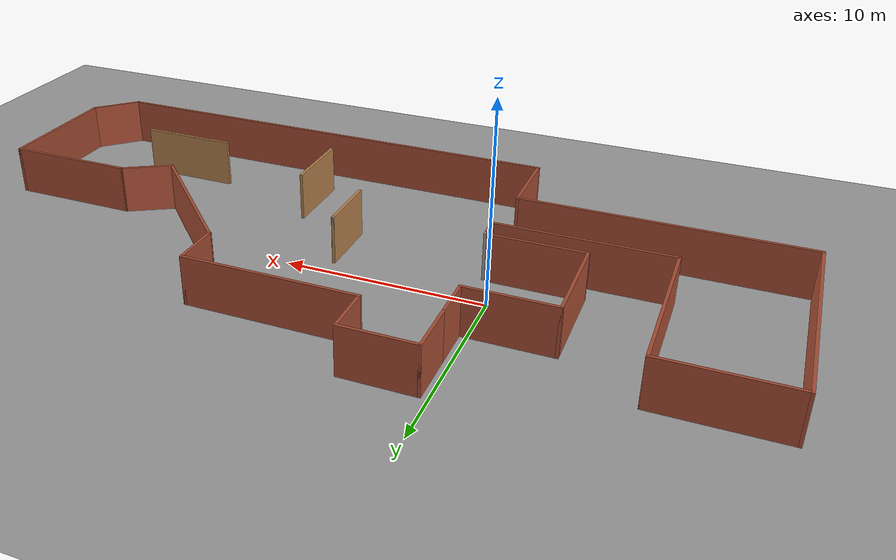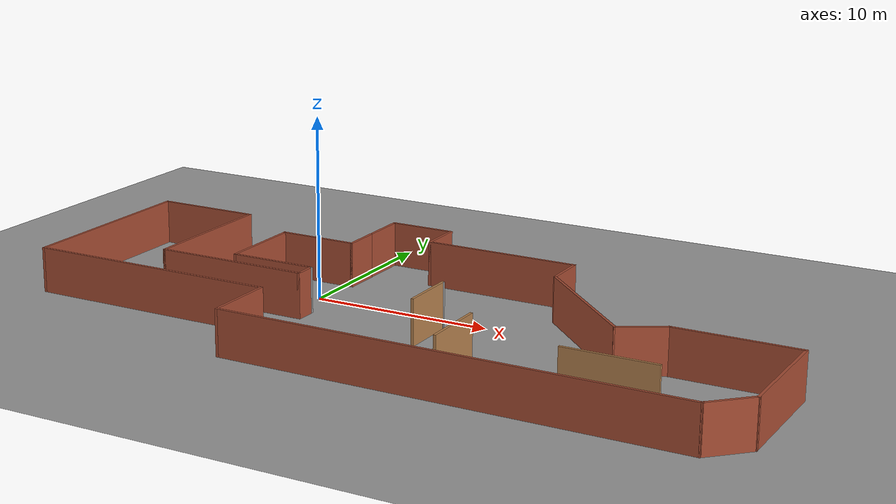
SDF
<?xml version='1.0'?>
<sdf version='1.6'>

  <light name='sun' type='directional'>
      <cast_shadows>1</cast_shadows>
      <pose>0 0 10 0 -0 0</pose>
      <diffuse>0.8 0.8 0.8 1</diffuse>
      <specular>0.2 0.2 0.2 1</specular>
      <attenuation>
        <range>1000</range>
        <constant>0.9</constant>
        <linear>0.01</linear>
        <quadratic>0.001</quadratic>
      </attenuation>
      <direction>0.5 0.1 -0.9</direction>
  </light>
  <scene>
      <ambient>0.4 0.4 0.4 1</ambient>
      <background>0.7 0.7 0.7 1</background>
      <shadows>1</shadows>
  </scene>
  <physics type='ode'>
      <max_step_size>0.01</max_step_size>
      <real_time_factor>1</real_time_factor>
      <real_time_update_rate>100</real_time_update_rate>
      <gravity>0 0 -9.8</gravity>
  </physics>
    <model name='ground_plane_0'>
      <static>1</static>
      <link name='link'>
        <collision name='collision'>
          <geometry>
            <plane>
              <normal>0 0 1</normal>
              <size>100 100</size>
            </plane>
          </geometry>
          <surface>
            <friction>
              <ode>
                <mu>100</mu>
                <mu2>50</mu2>
              </ode>
            </friction>
            <bounce/>
            <contact>
              <ode/>
            </contact>
          </surface>
          <max_contacts>10</max_contacts>
        </collision>
        <visual name='visual'>
          <cast_shadows>0</cast_shadows>
          <geometry>
            <plane>
              <normal>0 0 1</normal>
              <size>100 100</size>
            </plane>
          </geometry>
          <material>
            <script>
              <uri>file://media/materials/scripts/gazebo.material</uri>
              <name>Gazebo/Grey</name>
            </script>
          </material>
        </visual>
        <velocity_decay>
          <linear>0</linear>
          <angular>0</angular>
        </velocity_decay>
        <self_collide>0</self_collide>
        <kinematic>0</kinematic>
        <gravity>1</gravity>
      </link>
      <pose>0.497681 0 0 0 -0 0</pose>
    </model>
  <model name='test_world'>
    <pose frame=''>6.80053 -1.37855 0 0 -0 0</pose>
    <link name='Wall_0'>
      <collision name='Wall_0_Collision'>
        <geometry>
          <box>
            <size>4.75 0.15 2.5</size>
          </box>
        </geometry>
        <pose frame=''>0 0 1.25 0 -0 0</pose>
      </collision>
      <visual name='Wall_0_Visual'>
        <pose frame=''>0 0 1.25 0 -0 0</pose>
        <geometry>
          <box>
            <size>4.75 0.15 2.5</size>
          </box>
        </geometry>
        <material>
          <script>
            <uri>file://media/materials/scripts/gazebo.material</uri>
            <name>Gazebo/Bricks</name>
          </script>
          <ambient>1 1 1 1</ambient>
        </material>
        <meta>
          <layer>0</layer>
        </meta>
      </visual>
      <pose frame=''>-8.45053 -0.751446 0 0 -0 3.14159</pose>
    </link>
    <link name='Wall_10'>
      <collision name='Wall_10_Collision'>
        <geometry>
          <box>
            <size>2.5 0.15 2.5</size>
          </box>
        </geometry>
        <pose frame=''>0 0 1.25 0 -0 0</pose>
      </collision>
      <visual name='Wall_10_Visual'>
        <pose frame=''>0 0 1.25 0 -0 0</pose>
        <geometry>
          <box>
            <size>2.5 0.15 2.5</size>
          </box>
        </geometry>
        <material>
          <script>
            <uri>file://media/materials/scripts/gazebo.material</uri>
            <name>Gazebo/Bricks</name>
          </script>
          <ambient>1 1 1 1</ambient>
        </material>
        <meta>
          <layer>0</layer>
        </meta>
      </visual>
      <pose frame=''>5.79948 5.27355 0 0 -0 -1.5708</pose>
    </link>
    <link name='Wall_11'>
      <collision name='Wall_11_Collision'>
        <geometry>
          <box>
            <size>8.25 0.15 2.5</size>
          </box>
        </geometry>
        <pose frame=''>0 0 1.25 0 -0 0</pose>
      </collision>
      <visual name='Wall_11_Visual'>
        <pose frame=''>0 0 1.25 0 -0 0</pose>
        <geometry>
          <box>
            <size>8.25 0.15 2.5</size>
          </box>
        </geometry>
        <material>
          <script>
            <uri>file://media/materials/scripts/gazebo.material</uri>
            <name>Gazebo/Bricks</name>
          </script>
          <ambient>1 1 1 1</ambient>
        </material>
        <meta>
          <layer>0</layer>
        </meta>
      </visual>
      <pose frame=''>8.66326 1.23477 0 0 -0 -0.785398</pose>
    </link>
    <link name='Wall_12'>
      <collision name='Wall_12_Collision'>
        <geometry>
          <box>
            <size>2.75 0.15 2.5</size>
          </box>
        </geometry>
        <pose frame=''>0 0 1.25 0 -0 0</pose>
      </collision>
      <visual name='Wall_12_Visual'>
        <pose frame=''>0 0 1.25 0 -0 0</pose>
        <geometry>
          <box>
            <size>2.75 0.15 2.5</size>
          </box>
        </geometry>
        <material>
          <script>
            <uri>file://media/materials/scripts/gazebo.material</uri>
            <name>Gazebo/Bricks</name>
          </script>
          <ambient>1 1 1 1</ambient>
        </material>
        <meta>
          <layer>0</layer>
        </meta>
      </visual>
      <pose frame=''>12.6529 -0.979011 0 0 -0 0.523599</pose>
    </link>
    <link name='Wall_13'>
      <collision name='Wall_13_Collision'>
        <geometry>
          <box>
            <size>6.75 0.15 2.5</size>
          </box>
        </geometry>
        <pose frame=''>0 0 1.25 0 -0 0</pose>
      </collision>
      <visual name='Wall_13_Visual'>
        <pose frame=''>0 0 1.25 0 -0 0</pose>
        <geometry>
          <box>
            <size>6.75 0.15 2.5</size>
          </box>
        </geometry>
        <material>
          <script>
            <uri>file://media/materials/scripts/gazebo.material</uri>
            <name>Gazebo/Bricks</name>
          </script>
          <ambient>1 1 1 1</ambient>
        </material>
        <meta>
          <layer>0</layer>
        </meta>
      </visual>
      <pose frame=''>17.0787 -0.329011 0 0 -0 0</pose>
    </link>
    <link name='Wall_14'>
      <collision name='Wall_14_Collision'>
        <geometry>
          <box>
            <size>6.75 0.15 2.5</size>
          </box>
        </geometry>
        <pose frame=''>0 0 1.25 0 -0 0</pose>
      </collision>
      <visual name='Wall_14_Visual'>
        <pose frame=''>0 0 1.25 0 -0 0</pose>
        <geometry>
          <box>
            <size>6.75 0.15 2.5</size>
          </box>
        </geometry>
        <material>
          <script>
            <uri>file://media/materials/scripts/gazebo.material</uri>
            <name>Gazebo/Bricks</name>
          </script>
          <ambient>1 1 1 1</ambient>
        </material>
        <meta>
          <layer>0</layer>
        </meta>
      </visual>
      <pose frame=''>20.3787 -3.62901 0 0 -0 -1.5708</pose>
    </link>
    <link name='Wall_15'>
      <collision name='Wall_15_Collision'>
        <geometry>
          <box>
            <size>2.75 0.15 2.5</size>
          </box>
        </geometry>
        <pose frame=''>0 0 1.25 0 -0 0</pose>
      </collision>
      <visual name='Wall_15_Visual'>
        <pose frame=''>0 0 1.25 0 -0 0</pose>
        <geometry>
          <box>
            <size>2.75 0.15 2.5</size>
          </box>
        </geometry>
        <material>
          <script>
            <uri>file://media/materials/scripts/gazebo.material</uri>
            <name>Gazebo/Bricks</name>
          </script>
          <ambient>1 1 1 1</ambient>
        </material>
        <meta>
          <layer>0</layer>
        </meta>
      </visual>
      <pose frame=''>19.4595 -7.84825 0 0 -0 -2.35619</pose>
    </link>
    <link name='Wall_16'>
      <collision name='Wall_16_Collision'>
        <geometry>
          <box>
            <size>25 0.15 2.5</size>
          </box>
        </geometry>
        <pose frame=''>0 0 1.25 0 -0 0</pose>
      </collision>
      <visual name='Wall_16_Visual'>
        <pose frame=''>0 0 1.25 0 -0 0</pose>
        <geometry>
          <box>
            <size>25 0.15 2.5</size>
          </box>
        </geometry>
        <material>
          <script>
            <uri>file://media/materials/scripts/gazebo.material</uri>
            <name>Gazebo/Bricks</name>
          </script>
          <ambient>1 1 1 1</ambient>
        </material>
        <meta>
          <layer>0</layer>
        </meta>
      </visual>
      <pose frame=''>6.11523 -8.76749 0 0 -0 3.14159</pose>
    </link>
    <link name='Wall_17'>
      <collision name='Wall_17_Collision'>
        <geometry>
          <box>
            <size>4 0.15 2.5</size>
          </box>
        </geometry>
        <pose frame=''>0 0 1.25 0 -0 0</pose>
      </collision>
      <visual name='Wall_17_Visual'>
        <pose frame=''>0 0 1.25 0 -0 0</pose>
        <geometry>
          <box>
            <size>4 0.15 2.5</size>
          </box>
        </geometry>
        <material>
          <script>
            <uri>file://media/materials/scripts/gazebo.material</uri>
            <name>Gazebo/Bricks</name>
          </script>
          <ambient>1 1 1 1</ambient>
        </material>
        <meta>
          <layer>0</layer>
        </meta>
      </visual>
      <pose frame=''>-6.30977 -6.84249 0 0 -0 1.5708</pose>
    </link>
    <link name='Wall_18'>
      <collision name='Wall_18_Collision'>
        <geometry>
          <box>
            <size>14.25 0.15 2.5</size>
          </box>
        </geometry>
        <pose frame=''>0 0 1.25 0 -0 0</pose>
      </collision>
      <visual name='Wall_18_Visual'>
        <pose frame=''>0 0 1.25 0 -0 0</pose>
        <geometry>
          <box>
            <size>14.25 0.15 2.5</size>
          </box>
        </geometry>
        <material>
          <script>
            <uri>file://media/materials/scripts/gazebo.material</uri>
            <name>Gazebo/Bricks</name>
          </script>
          <ambient>1 1 1 1</ambient>
        </material>
        <meta>
          <layer>0</layer>
        </meta>
      </visual>
      <pose frame=''>-13.3598 -4.91749 0 0 -0 3.14159</pose>
    </link>
    <link name='Wall_19'>
      <collision name='Wall_19_Collision'>
        <geometry>
          <box>
            <size>11.25 0.15 2.5</size>
          </box>
        </geometry>
        <pose frame=''>0 0 1.25 0 -0 0</pose>
      </collision>
      <visual name='Wall_19_Visual'>
        <pose frame=''>0 0 1.25 0 -0 0</pose>
        <geometry>
          <box>
            <size>11.25 0.15 2.5</size>
          </box>
        </geometry>
        <material>
          <script>
            <uri>file://media/materials/scripts/gazebo.material</uri>
            <name>Gazebo/Bricks</name>
          </script>
          <ambient>1 1 1 1</ambient>
        </material>
        <meta>
          <layer>0</layer>
        </meta>
      </visual>
      <pose frame=''>-20.4098 0.632512 0 0 -0 1.5708</pose>
    </link>
    <link name='Wall_2'>
      <collision name='Wall_2_Collision'>
        <geometry>
          <box>
            <size>5 0.15 2.5</size>
          </box>
        </geometry>
        <pose frame=''>0 0 1.25 0 -0 0</pose>
      </collision>
      <visual name='Wall_2_Visual'>
        <pose frame=''>0 0 1.25 0 -0 0</pose>
        <geometry>
          <box>
            <size>5 0.15 2.5</size>
          </box>
        </geometry>
        <material>
          <script>
            <uri>file://media/materials/scripts/gazebo.material</uri>
            <name>Gazebo/Bricks</name>
          </script>
          <ambient>1 1 1 1</ambient>
        </material>
        <meta>
          <layer>0</layer>
        </meta>
      </visual>
      <pose frame=''>-10.7505 1.67355 0 0 -0 1.5708</pose>
    </link>
    <link name='Wall_20'>
      <collision name='Wall_20_Collision'>
        <geometry>
          <box>
            <size>6 0.15 2.5</size>
          </box>
        </geometry>
        <pose frame=''>0 0 1.25 0 -0 0</pose>
      </collision>
      <visual name='Wall_20_Visual'>
        <pose frame=''>0 0 1.25 0 -0 0</pose>
        <geometry>
          <box>
            <size>6 0.15 2.5</size>
          </box>
        </geometry>
        <material>
          <script>
            <uri>file://media/materials/scripts/gazebo.material</uri>
            <name>Gazebo/Bricks</name>
          </script>
          <ambient>1 1 1 1</ambient>
        </material>
        <meta>
          <layer>0</layer>
        </meta>
      </visual>
      <pose frame=''>-17.4848 6.18251 0 0 -0 0</pose>
    </link>
    <link name='Wall_21'>
      <collision name='Wall_21_Collision'>
        <geometry>
          <box>
            <size>8.25 0.15 2.5</size>
          </box>
        </geometry>
        <pose frame=''>0 0 1.25 0 -0 0</pose>
      </collision>
      <visual name='Wall_21_Visual'>
        <pose frame=''>0 0 1.25 0 -0 0</pose>
        <geometry>
          <box>
            <size>8.25 0.15 2.5</size>
          </box>
        </geometry>
        <material>
          <script>
            <uri>file://media/materials/scripts/gazebo.material</uri>
            <name>Gazebo/Bricks</name>
          </script>
          <ambient>1 1 1 1</ambient>
        </material>
        <meta>
          <layer>0</layer>
        </meta>
      </visual>
      <pose frame=''>-14.5598 2.13251 0 0 -0 -1.5708</pose>
    </link>
    <link name='Wall_22'>
      <collision name='Wall_22_Collision'>
        <geometry>
          <box>
            <size>8.75 0.15 2.5</size>
          </box>
        </geometry>
        <pose frame=''>0 0 1.25 0 -0 0</pose>
      </collision>
      <visual name='Wall_22_Visual'>
        <pose frame=''>0 0 1.25 0 -0 0</pose>
        <geometry>
          <box>
            <size>8.75 0.15 2.5</size>
          </box>
        </geometry>
        <material>
          <script>
            <uri>file://media/materials/scripts/gazebo.material</uri>
            <name>Gazebo/Bricks</name>
          </script>
          <ambient>1 1 1 1</ambient>
        </material>
        <meta>
          <layer>0</layer>
        </meta>
      </visual>
      <pose frame=''>-10.2598 -1.91749 0 0 -0 0</pose>
    </link>
    <link name='Wall_23'>
      <collision name='Wall_23_Collision'>
        <geometry>
          <box>
            <size>1.25 0.15 2.5</size>
          </box>
        </geometry>
        <pose frame=''>0 0 1.25 0 -0 0</pose>
      </collision>
      <visual name='Wall_23_Visual'>
        <pose frame=''>0 0 1.25 0 -0 0</pose>
        <geometry>
          <box>
            <size>1.25 0.15 2.5</size>
          </box>
        </geometry>
        <material>
          <script>
            <uri>file://media/materials/scripts/gazebo.material</uri>
            <name>Gazebo/Bricks</name>
          </script>
          <ambient>1 1 1 1</ambient>
        </material>
        <meta>
          <layer>0</layer>
        </meta>
      </visual>
      <pose frame=''>-5.95977 -1.36749 0 0 -0 1.5708</pose>
    </link>
    <link name='Wall_24'>
      <collision name='Wall_24_Collision'>
        <geometry>
          <box>
            <size>0.15 0.15 2.5</size>
          </box>
        </geometry>
        <pose frame=''>0 0 1.25 0 -0 0</pose>
      </collision>
      <visual name='Wall_24_Visual'>
        <pose frame=''>0 0 1.25 0 -0 0</pose>
        <geometry>
          <box>
            <size>0.15 0.15 2.5</size>
          </box>
        </geometry>
        <material>
          <script>
            <uri>file://media/materials/scripts/gazebo.material</uri>
            <name>Gazebo/Grey</name>
          </script>
          <ambient>1 1 1 1</ambient>
        </material>
        <meta>
          <layer>0</layer>
        </meta>
      </visual>
      <pose frame=''>-5.95977 -0.817488 0 0 -0 0</pose>
    </link>
    <link name='Wall_26'>
      <collision name='Wall_26_Collision'>
        <geometry>
          <box>
            <size>3.25 0.15 2.5</size>
          </box>
        </geometry>
        <pose frame=''>0 0 1.25 0 -0 0</pose>
      </collision>
      <visual name='Wall_26_Visual'>
        <pose frame=''>0 0 1.25 0 -0 0</pose>
        <geometry>
          <box>
            <size>3.25 0.15 2.5</size>
          </box>
        </geometry>
        <material>
          <script>
            <uri>file://media/materials/scripts/gazebo.material</uri>
            <name>Gazebo/Wood</name>
          </script>
          <ambient>1 1 1 1</ambient>
        </material>
        <meta>
          <layer>0</layer>
        </meta>
      </visual>
      <pose frame=''>1.20431 -1.1203 0 0 -0 1.5708</pose>
    </link>
    <link name='Wall_27'>
      <collision name='Wall_27_Collision'>
        <geometry>
          <box>
            <size>0.16 0.15 2.5</size>
          </box>
        </geometry>
        <pose frame=''>0 0 1.25 0 -0 0</pose>
      </collision>
      <visual name='Wall_27_Visual'>
        <pose frame=''>0 0 1.25 0 -0 0</pose>
        <geometry>
          <box>
            <size>0.16 0.15 2.5</size>
          </box>
        </geometry>
        <material>
          <script>
            <uri>file://media/materials/scripts/gazebo.material</uri>
            <name>Gazebo/Grey</name>
          </script>
          <ambient>1 1 1 1</ambient>
        </material>
        <meta>
          <layer>0</layer>
        </meta>
      </visual>
      <pose frame=''>1.20931 0.429698 0 0 -0 0</pose>
    </link>
    <link name='Wall_29'>
      <collision name='Wall_29_Collision'>
        <geometry>
          <box>
            <size>3.75 0.15 2.5</size>
          </box>
        </geometry>
        <pose frame=''>0 0 1.25 0 -0 0</pose>
      </collision>
      <visual name='Wall_29_Visual'>
        <pose frame=''>0 0 1.25 0 -0 0</pose>
        <geometry>
          <box>
            <size>3.75 0.15 2.5</size>
          </box>
        </geometry>
        <material>
          <script>
            <uri>file://media/materials/scripts/gazebo.material</uri>
            <name>Gazebo/Wood</name>
          </script>
          <ambient>1 1 1 1</ambient>
        </material>
        <meta>
          <layer>0</layer>
        </meta>
      </visual>
      <pose frame=''>4.72395 -5.03668 0 0 -0 -1.5708</pose>
    </link>
    <link name='Wall_3'>
      <collision name='Wall_3_Collision'>
        <geometry>
          <box>
            <size>4.5 0.15 2.5</size>
          </box>
        </geometry>
        <pose frame=''>0 0 1.25 0 -0 0</pose>
      </collision>
      <visual name='Wall_3_Visual'>
        <pose frame=''>0 0 1.25 0 -0 0</pose>
        <geometry>
          <box>
            <size>4.5 0.15 2.5</size>
          </box>
        </geometry>
        <material>
          <script>
            <uri>file://media/materials/scripts/gazebo.material</uri>
            <name>Gazebo/Bricks</name>
          </script>
          <ambient>1 1 1 1</ambient>
        </material>
        <meta>
          <layer>0</layer>
        </meta>
      </visual>
      <pose frame=''>-8.57553 4.09855 0 0 -0 0</pose>
    </link>
    <link name='Wall_32'>
      <collision name='Wall_32_Collision'>
        <geometry>
          <box>
            <size>5 0.15 2.5</size>
          </box>
        </geometry>
        <pose frame=''>0 0 1.25 0 -0 0</pose>
      </collision>
      <visual name='Wall_32_Visual'>
        <pose frame=''>0 0 1.25 0 -0 0</pose>
        <geometry>
          <box>
            <size>5 0.15 2.5</size>
          </box>
        </geometry>
        <material>
          <script>
            <uri>file://media/materials/scripts/gazebo.material</uri>
            <name>Gazebo/Wood</name>
          </script>
          <ambient>1 1 1 1</ambient>
        </material>
        <meta>
          <layer>0</layer>
        </meta>
      </visual>
      <pose frame=''>12.8697 -5.39659 0 0 -0 3.14159</pose>
    </link>
    <link name='Wall_4'>
      <collision name='Wall_4_Collision'>
        <geometry>
          <box>
            <size>2.25 0.15 2.5</size>
          </box>
        </geometry>
        <pose frame=''>0 0 1.25 0 -0 0</pose>
      </collision>
      <visual name='Wall_4_Visual'>
        <pose frame=''>0 0 1.25 0 -0 0</pose>
        <geometry>
          <box>
            <size>2.25 0.15 2.5</size>
          </box>
        </geometry>
        <material>
          <script>
            <uri>file://media/materials/scripts/gazebo.material</uri>
            <name>Gazebo/Bricks</name>
          </script>
          <ambient>1 1 1 1</ambient>
        </material>
        <meta>
          <layer>0</layer>
        </meta>
      </visual>
      <pose frame=''>-6.40053 5.14855 0 0 -0 1.5708</pose>
    </link>
    <link name='Wall_6'>
      <collision name='Wall_6_Collision'>
        <geometry>
          <box>
            <size>2.75 0.15 2.5</size>
          </box>
        </geometry>
        <pose frame=''>0 0 1.25 0 -0 0</pose>
      </collision>
      <visual name='Wall_6_Visual'>
        <pose frame=''>0 0 1.25 0 -0 0</pose>
        <geometry>
          <box>
            <size>2.75 0.15 2.5</size>
          </box>
        </geometry>
        <material>
          <script>
            <uri>file://media/materials/scripts/gazebo.material</uri>
            <name>Gazebo/Bricks</name>
          </script>
          <ambient>1 1 1 1</ambient>
        </material>
        <meta>
          <layer>0</layer>
        </meta>
      </visual>
      <pose frame=''>-6.40053 7.49855 0 0 -0 1.5708</pose>
    </link>
    <link name='Wall_7'>
      <collision name='Wall_7_Collision'>
        <geometry>
          <box>
            <size>3.75 0.15 2.5</size>
          </box>
        </geometry>
        <pose frame=''>0 0 1.25 0 -0 0</pose>
      </collision>
      <visual name='Wall_7_Visual'>
        <pose frame=''>0 0 1.25 0 -0 0</pose>
        <geometry>
          <box>
            <size>3.75 0.15 2.5</size>
          </box>
        </geometry>
        <material>
          <script>
            <uri>file://media/materials/scripts/gazebo.material</uri>
            <name>Gazebo/Bricks</name>
          </script>
          <ambient>1 1 1 1</ambient>
        </material>
        <meta>
          <layer>0</layer>
        </meta>
      </visual>
      <pose frame=''>-4.60053 8.79855 0 0 -0 0</pose>
    </link>
    <link name='Wall_8'>
      <collision name='Wall_8_Collision'>
        <geometry>
          <box>
            <size>2.5 0.15 2.5</size>
          </box>
        </geometry>
        <pose frame=''>0 0 1.25 0 -0 0</pose>
      </collision>
      <visual name='Wall_8_Visual'>
        <pose frame=''>0 0 1.25 0 -0 0</pose>
        <geometry>
          <box>
            <size>2.5 0.15 2.5</size>
          </box>
        </geometry>
        <material>
          <script>
            <uri>file://media/materials/scripts/gazebo.material</uri>
            <name>Gazebo/Bricks</name>
          </script>
          <ambient>1 1 1 1</ambient>
        </material>
        <meta>
          <layer>0</layer>
        </meta>
      </visual>
      <pose frame=''>-2.80052 7.62355 0 0 -0 -1.5708</pose>
    </link>
    <link name='Wall_9'>
      <collision name='Wall_9_Collision'>
        <geometry>
          <box>
            <size>8.75 0.15 2.5</size>
          </box>
        </geometry>
        <pose frame=''>0 0 1.25 0 -0 0</pose>
      </collision>
      <visual name='Wall_9_Visual'>
        <pose frame=''>0 0 1.25 0 -0 0</pose>
        <geometry>
          <box>
            <size>8.75 0.15 2.5</size>
          </box>
        </geometry>
        <material>
          <script>
            <uri>file://media/materials/scripts/gazebo.material</uri>
            <name>Gazebo/Bricks</name>
          </script>
          <ambient>1 1 1 1</ambient>
        </material>
        <meta>
          <layer>0</layer>
        </meta>
      </visual>
      <pose frame=''>1.49947 6.44855 0 0 -0 0</pose>
    </link>
    <static>1</static>
  </model>
</sdf>
